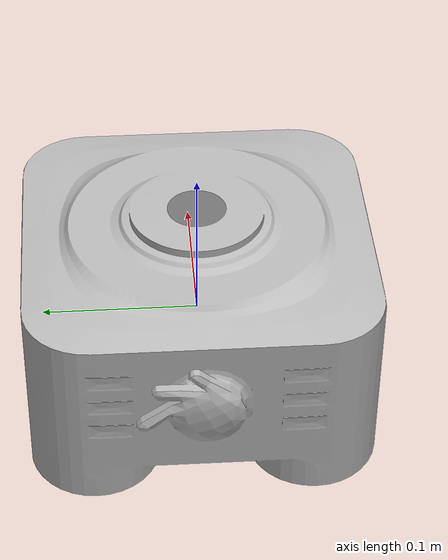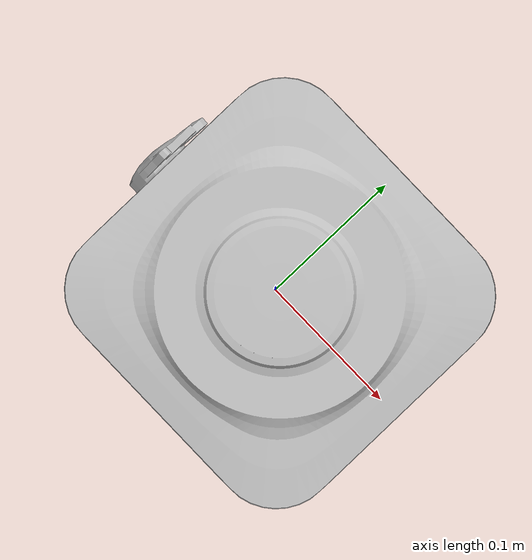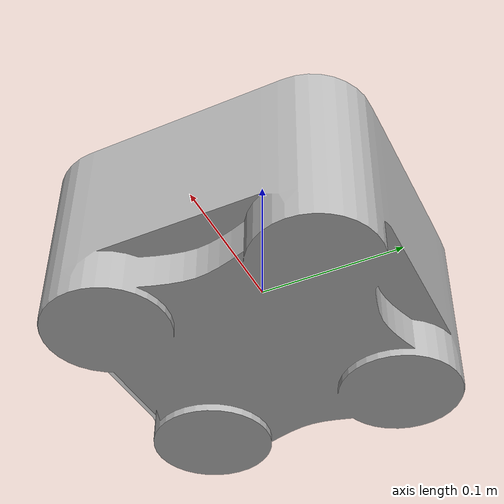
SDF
<?xml version="1.0" ?>
<sdf version="1.5">
  <model name="blender_device">
    <link name="blender_device">
      <gravity>false</gravity>
      <inertial>
        <mass>0.02</mass>
      </inertial>
      <collision name="blender_device_collision">
        <geometry><box><size>0.0001 0.0001 0.0001</size></box></geometry>
          <surface>
            <contact>
              <collide_without_contact>true</collide_without_contact>
            </contact>
          </surface>
      </collision>
      <visual name="blender_device_visual">
        <geometry>
          <mesh>
            <uri>model://blender_device/meshes/blender_device.stl</uri>
          </mesh>
        </geometry>
      </visual>
    </link>
  </model>
</sdf>
